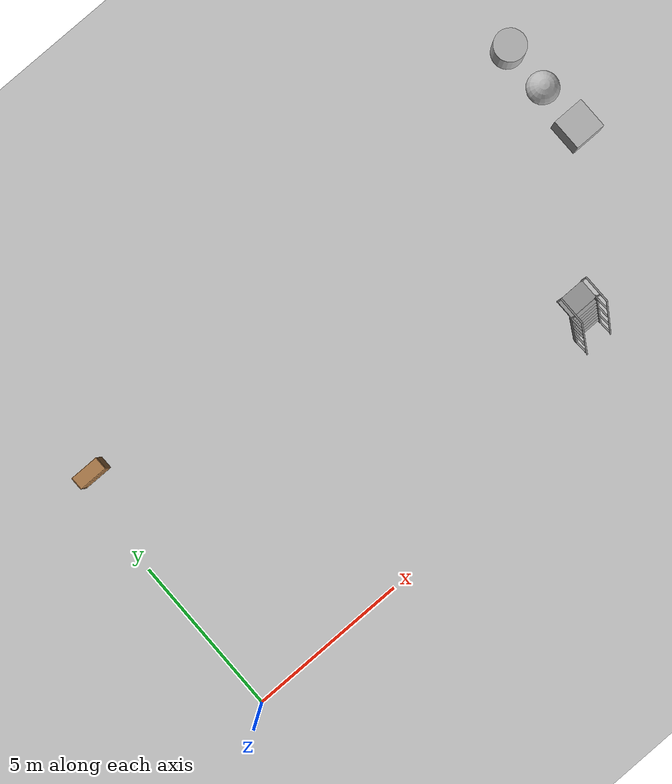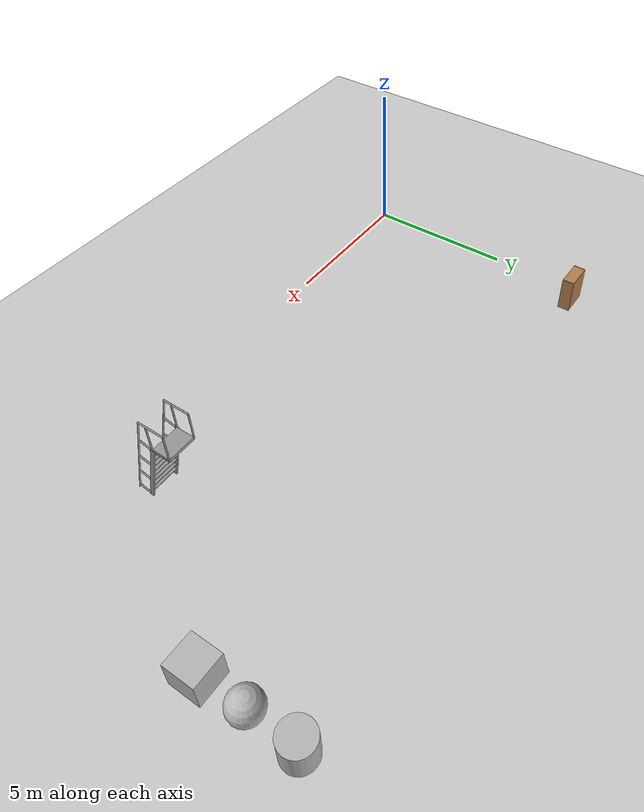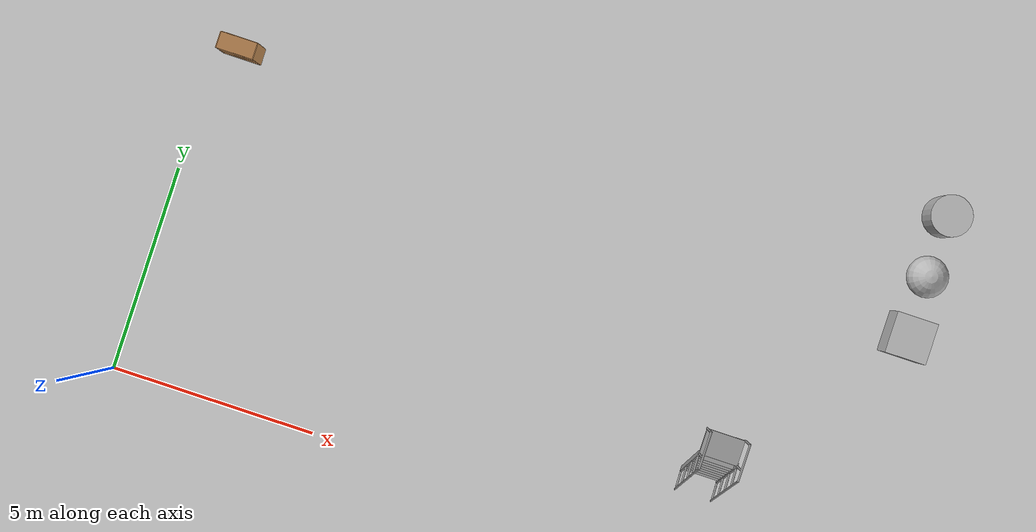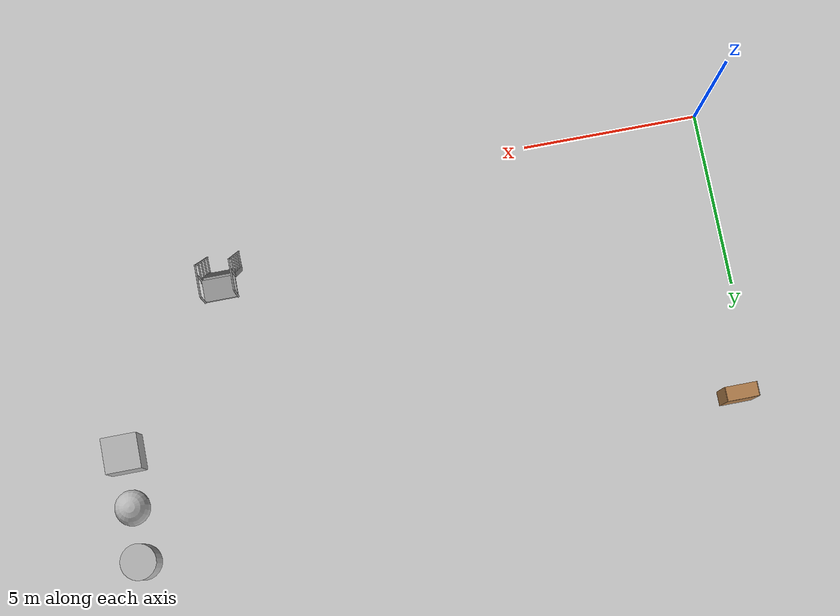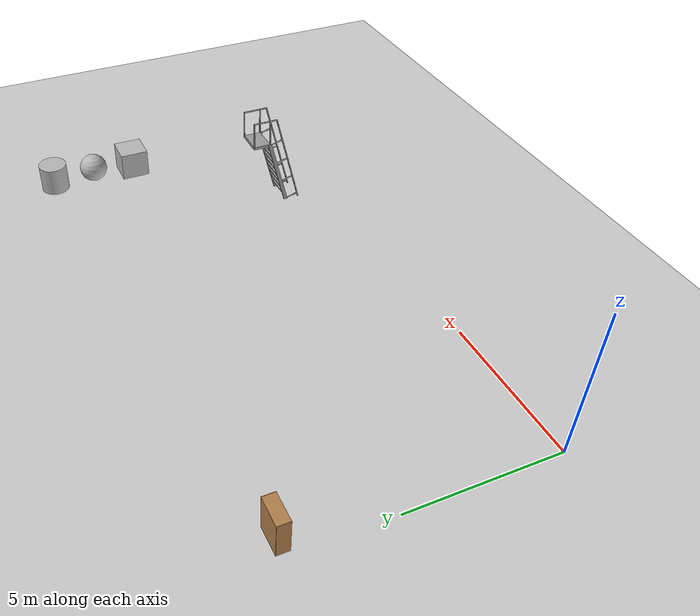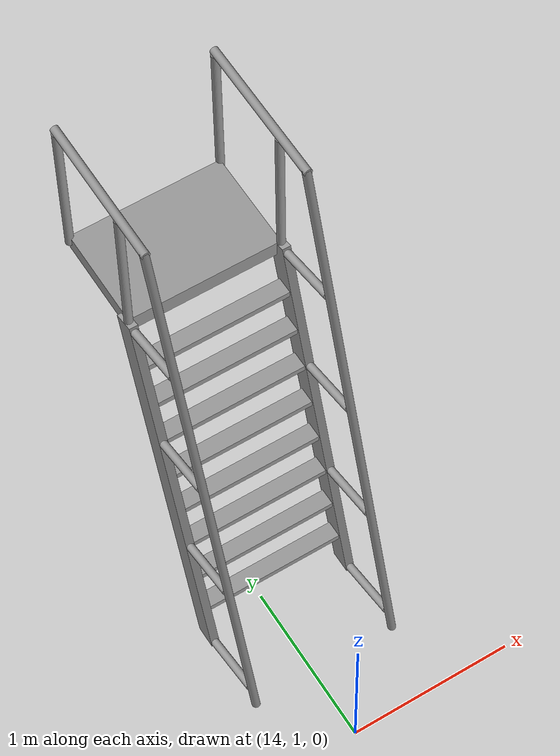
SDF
<sdf version="1.6">
 <world name="default">
  <model name="ground_plane">
   <static>1</static>
   <link name="link">
    <collision name="collision">
     <geometry><plane><normal>0 0 1</normal><size>100 100</size></plane></geometry>
     <surface>
      <contact><collide_bitmask>65535</collide_bitmask></contact>
      <friction><ode><mu>100</mu><mu2>50</mu2></ode></friction>
     </surface>
    </collision>
    <visual name="visual">
     <cast_shadows>0</cast_shadows>
     <geometry><plane><normal>0 0 1</normal><size>100 100</size></plane></geometry>
     <material>
      <script><uri>file://media/materials/scripts/gazebo.material</uri><name>Gazebo/Grey</name></script>
     </material>
    </visual>
   </link>
  </model>
  <model name="bookshelf_1">
   <static>1</static>
   <link name="link">
    <inertial><mass>1</mass></inertial>
    <collision name="back">
     <pose>0 0.005 0.6 0 -0 0</pose>
     <geometry><box><size>0.9 0.01 1.2</size></box></geometry>
    </collision>
    <visual name="visual1">
     <pose>0 0.005 0.6 0 -0 0</pose>
     <geometry><box><size>0.9 0.01 1.2</size></box></geometry>
     <material>
      <script><uri>file://media/materials/scripts/gazebo.material</uri><name>Gazebo/Wood</name></script>
     </material>
    </visual>
    <collision name="left_side">
     <pose>0.45 -0.195 0.6 0 -0 0</pose>
     <geometry><box><size>0.02 0.4 1.2</size></box></geometry>
    </collision>
    <visual name="visual2">
     <pose>0.45 -0.195 0.6 0 -0 0</pose>
     <geometry><box><size>0.02 0.4 1.2</size></box></geometry>
     <material>
      <script><uri>file://media/materials/scripts/gazebo.material</uri><name>Gazebo/Wood</name></script>
     </material>
    </visual>
    <collision name="right_side">
     <pose>-0.45 -0.195 0.6 0 -0 0</pose>
     <geometry><box><size>0.02 0.4 1.2</size></box></geometry>
    </collision>
    <visual name="visual3">
     <pose>-0.45 -0.195 0.6 0 -0 0</pose>
     <geometry><box><size>0.02 0.4 1.2</size></box></geometry>
     <material>
      <script><uri>file://media/materials/scripts/gazebo.material</uri><name>Gazebo/Wood</name></script>
     </material>
    </visual>
    <collision name="bottom">
     <pose>0 -0.195 0.03 0 -0 0</pose>
     <geometry><box><size>0.88 0.4 0.06</size></box></geometry>
    </collision>
    <visual name="visual4">
     <pose>0 -0.195 0.03 0 -0 0</pose>
     <geometry><box><size>0.88 0.4 0.06</size></box></geometry>
     <material>
      <script><uri>file://media/materials/scripts/gazebo.material</uri><name>Gazebo/Wood</name></script>
     </material>
    </visual>
    <collision name="top">
     <pose>0 -0.195 1.19 0 -0 0</pose>
     <geometry><box><size>0.88 0.4 0.02</size></box></geometry>
    </collision>
    <visual name="visual5">
     <pose>0 -0.195 1.19 0 -0 0</pose>
     <geometry><box><size>0.88 0.4 0.02</size></box></geometry>
     <material>
      <script><uri>file://media/materials/scripts/gazebo.material</uri><name>Gazebo/Wood</name></script>
     </material>
    </visual>
    <collision name="low_shelf">
     <pose>0 -0.195 0.43 0 -0 0</pose>
     <geometry><box><size>0.88 0.4 0.02</size></box></geometry>
    </collision>
    <visual name="visual6">
     <pose>0 -0.195 0.43 0 -0 0</pose>
     <geometry><box><size>0.88 0.4 0.02</size></box></geometry>
     <material>
      <script><uri>file://media/materials/scripts/gazebo.material</uri><name>Gazebo/Wood</name></script>
     </material>
    </visual>
    <collision name="high_shelf">
     <pose>0 -0.195 0.8 0 -0 0</pose>
     <geometry><box><size>0.88 0.4 0.02</size></box></geometry>
    </collision>
    <visual name="visual7">
     <pose>0 -0.195 0.8 0 -0 0</pose>
     <geometry><box><size>0.88 0.4 0.02</size></box></geometry>
     <material>
      <script><uri>file://media/materials/scripts/gazebo.material</uri><name>Gazebo/Wood</name></script>
     </material>
    </visual>
   </link>
   <pose>0.626571 8.34129 0 0 -0 0</pose>
  </model>
  <model name="textured_shapes_0">
   <pose>17.6665 8.09572 0.5 0 -0 0</pose>
   <link name="box">
    <pose>0 -1.5 0 0 -0 0</pose>
    <collision name="collision"><geometry><box><size>1 1 1</size></box></geometry></collision>
    <visual name="visual">
     <geometry><box><size>1 1 1</size></box></geometry>
     <material>
      <script>
       <uri>model://textured_shapes/materials/scripts</uri>
       <uri>model://textured_shapes/materials/textures</uri>
       <name>TexturedShape/Squares</name>
      </script>
     </material>
    </visual>
    <inertial>
     <inertia><ixx>1</ixx><ixy>0</ixy><ixz>0</ixz><iyy>1</iyy><iyz>0</iyz><izz>1</izz></inertia>
     <mass>1</mass>
    </inertial>
   </link>
   <link name="sphere">
    <collision name="collision"><geometry><sphere><radius>0.5</radius></sphere></geometry></collision>
    <visual name="visual">
     <geometry><sphere><radius>0.5</radius></sphere></geometry>
     <material>
      <script>
       <uri>model://textured_shapes/materials/scripts</uri>
       <uri>model://textured_shapes/materials/textures</uri>
       <name>TexturedShape/Squares</name>
      </script>
     </material>
    </visual>
    <inertial>
     <inertia><ixx>1</ixx><ixy>0</ixy><ixz>0</ixz><iyy>1</iyy><iyz>0</iyz><izz>1</izz></inertia>
     <mass>1</mass>
    </inertial>
   </link>
   <link name="cylinder">
    <pose>0 1.5 0 0 -0 0</pose>
    <collision name="collision">
     <geometry><cylinder><radius>0.5</radius><length>1</length></cylinder></geometry>
    </collision>
    <visual name="visual">
     <geometry><cylinder><radius>0.5</radius><length>1</length></cylinder></geometry>
     <material>
      <script>
       <uri>model://textured_shapes/materials/scripts</uri>
       <uri>model://textured_shapes/materials/textures</uri>
       <name>TexturedShape/Squares</name>
      </script>
     </material>
    </visual>
    <inertial>
     <inertia><ixx>1</ixx><ixy>0</ixy><ixz>0</ixz><iyy>1</iyy><iyz>0</iyz><izz>1</izz></inertia>
     <mass>1</mass>
    </inertial>
   </link>
  </model>
  <model name="ladder_75deg_2rails">
   <static>1</static>
   <link name="step0">
    <pose>0 0.071453 0.266667 0 -0 0</pose>
    <inertial>
     <mass>9.75482</mass>
     <inertia>
      <ixx>0.00957124</ixx>
      <iyy>0.65963</iyy>
      <izz>0.666842</izz>
      <ixy>0</ixy>
      <ixz>0</ixz>
      <iyz>0</iyz>
     </inertia>
    </inertial>
    <collision name="collision"><geometry><box><size>0.9 0.1016 0.0381</size></box></geometry></collision>
    <visual name="visual">
     <geometry><box><size>0.9 0.1016 0.0381</size></box></geometry>
     <material>
      <script><uri>file://media/materials/scripts/gazebo.material</uri><name>Gazebo/Grey</name></script>
     </material>
    </visual>
   </link>
   <link name="step1">
    <pose>0 0.142906 0.533333 0 -0 0</pose>
    <inertial>
     <mass>9.75482</mass>
     <inertia>
      <ixx>0.00957124</ixx>
      <iyy>0.65963</iyy>
      <izz>0.666842</izz>
      <ixy>0</ixy>
      <ixz>0</ixz>
      <iyz>0</iyz>
     </inertia>
    </inertial>
    <collision name="collision"><geometry><box><size>0.9 0.1016 0.0381</size></box></geometry></collision>
    <visual name="visual">
     <geometry><box><size>0.9 0.1016 0.0381</size></box></geometry>
     <material>
      <script><uri>file://media/materials/scripts/gazebo.material</uri><name>Gazebo/Grey</name></script>
     </material>
    </visual>
   </link>
   <link name="step2">
    <pose>0 0.214359 0.8 0 -0 0</pose>
    <inertial>
     <mass>9.75482</mass>
     <inertia>
      <ixx>0.00957124</ixx>
      <iyy>0.65963</iyy>
      <izz>0.666842</izz>
      <ixy>0</ixy>
      <ixz>0</ixz>
      <iyz>0</iyz>
     </inertia>
    </inertial>
    <collision name="collision"><geometry><box><size>0.9 0.1016 0.0381</size></box></geometry></collision>
    <visual name="visual">
     <geometry><box><size>0.9 0.1016 0.0381</size></box></geometry>
     <material>
      <script><uri>file://media/materials/scripts/gazebo.material</uri><name>Gazebo/Grey</name></script>
     </material>
    </visual>
   </link>
   <link name="step3">
    <pose>0 0.285812 1.06667 0 -0 0</pose>
    <inertial>
     <mass>9.75482</mass>
     <inertia>
      <ixx>0.00957124</ixx>
      <iyy>0.65963</iyy>
      <izz>0.666842</izz>
      <ixy>0</ixy>
      <ixz>0</ixz>
      <iyz>0</iyz>
     </inertia>
    </inertial>
    <collision name="collision"><geometry><box><size>0.9 0.1016 0.0381</size></box></geometry></collision>
    <visual name="visual">
     <geometry><box><size>0.9 0.1016 0.0381</size></box></geometry>
     <material>
      <script><uri>file://media/materials/scripts/gazebo.material</uri><name>Gazebo/Grey</name></script>
     </material>
    </visual>
   </link>
   <link name="step4">
    <pose>0 0.357266 1.33333 0 -0 0</pose>
    <inertial>
     <mass>9.75482</mass>
     <inertia>
      <ixx>0.00957124</ixx>
      <iyy>0.65963</iyy>
      <izz>0.666842</izz>
      <ixy>0</ixy>
      <ixz>0</ixz>
      <iyz>0</iyz>
     </inertia>
    </inertial>
    <collision name="collision"><geometry><box><size>0.9 0.1016 0.0381</size></box></geometry></collision>
    <visual name="visual">
     <geometry><box><size>0.9 0.1016 0.0381</size></box></geometry>
     <material>
      <script><uri>file://media/materials/scripts/gazebo.material</uri><name>Gazebo/Grey</name></script>
     </material>
    </visual>
   </link>
   <link name="step5">
    <pose>0 0.428719 1.6 0 -0 0</pose>
    <inertial>
     <mass>9.75482</mass>
     <inertia>
      <ixx>0.00957124</ixx>
      <iyy>0.65963</iyy>
      <izz>0.666842</izz>
      <ixy>0</ixy>
      <ixz>0</ixz>
      <iyz>0</iyz>
     </inertia>
    </inertial>
    <collision name="collision"><geometry><box><size>0.9 0.1016 0.0381</size></box></geometry></collision>
    <visual name="visual">
     <geometry><box><size>0.9 0.1016 0.0381</size></box></geometry>
     <material>
      <script><uri>file://media/materials/scripts/gazebo.material</uri><name>Gazebo/Grey</name></script>
     </material>
    </visual>
   </link>
   <link name="step6">
    <pose>0 0.500172 1.86667 0 -0 0</pose>
    <inertial>
     <mass>9.75482</mass>
     <inertia>
      <ixx>0.00957124</ixx>
      <iyy>0.65963</iyy>
      <izz>0.666842</izz>
      <ixy>0</ixy>
      <ixz>0</ixz>
      <iyz>0</iyz>
     </inertia>
    </inertial>
    <collision name="collision"><geometry><box><size>0.9 0.1016 0.0381</size></box></geometry></collision>
    <visual name="visual">
     <geometry><box><size>0.9 0.1016 0.0381</size></box></geometry>
     <material>
      <script><uri>file://media/materials/scripts/gazebo.material</uri><name>Gazebo/Grey</name></script>
     </material>
    </visual>
   </link>
   <link name="step7">
    <pose>0 0.571625 2.13333 0 -0 0</pose>
    <inertial>
     <mass>9.75482</mass>
     <inertia>
      <ixx>0.00957124</ixx>
      <iyy>0.65963</iyy>
      <izz>0.666842</izz>
      <ixy>0</ixy>
      <ixz>0</ixz>
      <iyz>0</iyz>
     </inertia>
    </inertial>
    <collision name="collision"><geometry><box><size>0.9 0.1016 0.0381</size></box></geometry></collision>
    <visual name="visual">
     <geometry><box><size>0.9 0.1016 0.0381</size></box></geometry>
     <material>
      <script><uri>file://media/materials/scripts/gazebo.material</uri><name>Gazebo/Grey</name></script>
     </material>
    </visual>
   </link>
   <link name="landing">
    <pose>0 0.943078 2.4 0 -0 0</pose>
    <inertial>
     <mass>57.6072</mass>
     <inertia><ixx>1.73518</ixx><iyy>3.89545</iyy><izz>5.6167</izz><ixy>0</ixy><ixz>0</ixz><iyz>0</iyz></inertia>
    </inertial>
    <collision name="collision"><geometry><box><size>0.9 0.6 0.1016</size></box></geometry></collision>
    <visual name="visual">
     <geometry><box><size>0.9 0.6 0.1016</size></box></geometry>
     <material>
      <script><uri>file://media/materials/scripts/gazebo.material</uri><name>Gazebo/Grey</name></script>
     </material>
    </visual>
   </link>
   <link name="left_side_wall">
    <pose>-0.45 0.321539 1.2 1.309 -0 0</pose>
    <collision name="collision"><geometry><box><size>0.0508 2.56466 0.13</size></box></geometry></collision>
    <visual name="visual">
     <geometry><box><size>0.0508 2.56466 0.13</size></box></geometry>
     <material>
      <script><uri>file://media/materials/scripts/gazebo.material</uri><name>Gazebo/Grey</name></script>
     </material>
    </visual>
   </link>
   <link name="right_side_wall">
    <pose>0.45 0.321539 1.2 1.309 -0 0</pose>
    <collision name="collision"><geometry><box><size>0.0508 2.56466 0.13</size></box></geometry></collision>
    <visual name="visual">
     <geometry><box><size>0.0508 2.56466 0.13</size></box></geometry>
     <material>
      <script><uri>file://media/materials/scripts/gazebo.material</uri><name>Gazebo/Grey</name></script>
     </material>
    </visual>
   </link>
   <link name="left_railing_long">
    <pose>-0.45 -0.053461 1.66651 -0.261799 0 0</pose>
    <collision name="collision">
     <geometry><cylinder><radius>0.02413</radius><length>3.51529</length></cylinder></geometry>
    </collision>
    <visual name="visual">
     <geometry><cylinder><radius>0.02413</radius><length>3.51529</length></cylinder></geometry>
     <material>
      <script><uri>file://media/materials/scripts/gazebo.material</uri><name>Gazebo/Grey</name></script>
     </material>
    </visual>
   </link>
   <link name="left_railing_upright0">
    <pose>-0.45 -0.210089 0.056293 1.309 -0 0</pose>
    <collision name="collision">
     <geometry><cylinder><radius>0.02413</radius><length>0.482963</length></cylinder></geometry>
    </collision>
    <visual name="visual">
     <geometry><cylinder><radius>0.02413</radius><length>0.482963</length></cylinder></geometry>
     <material>
      <script><uri>file://media/materials/scripts/gazebo.material</uri><name>Gazebo/Grey</name></script>
     </material>
    </visual>
   </link>
   <link name="left_railing_upright1">
    <pose>-0.45 0.00427 0.856293 1.309 -0 0</pose>
    <collision name="collision">
     <geometry><cylinder><radius>0.02413</radius><length>0.482963</length></cylinder></geometry>
    </collision>
    <visual name="visual">
     <geometry><cylinder><radius>0.02413</radius><length>0.482963</length></cylinder></geometry>
     <material>
      <script><uri>file://media/materials/scripts/gazebo.material</uri><name>Gazebo/Grey</name></script>
     </material>
    </visual>
   </link>
   <link name="left_railing_upright2">
    <pose>-0.45 0.21863 1.65629 1.309 -0 0</pose>
    <collision name="collision">
     <geometry><cylinder><radius>0.02413</radius><length>0.482963</length></cylinder></geometry>
    </collision>
    <visual name="visual">
     <geometry><cylinder><radius>0.02413</radius><length>0.482963</length></cylinder></geometry>
     <material>
      <script><uri>file://media/materials/scripts/gazebo.material</uri><name>Gazebo/Grey</name></script>
     </material>
    </visual>
   </link>
   <link name="left_railing_upright3">
    <pose>-0.45 0.432989 2.45629 1.309 -0 0</pose>
    <collision name="collision">
     <geometry><cylinder><radius>0.02413</radius><length>0.482963</length></cylinder></geometry>
    </collision>
    <visual name="visual">
     <geometry><cylinder><radius>0.02413</radius><length>0.482963</length></cylinder></geometry>
     <material>
      <script><uri>file://media/materials/scripts/gazebo.material</uri><name>Gazebo/Grey</name></script>
     </material>
    </visual>
   </link>
   <link name="left_railing_landing_top">
    <pose>-0.45 0.818078 3.35714 1.5708 -0 0</pose>
    <collision name="collision">
     <geometry><cylinder><radius>0.02413</radius><length>0.87413</length></cylinder></geometry>
    </collision>
    <visual name="visual">
     <geometry><cylinder><radius>0.02413</radius><length>0.87413</length></cylinder></geometry>
     <material>
      <script><uri>file://media/materials/scripts/gazebo.material</uri><name>Gazebo/Grey</name></script>
     </material>
    </visual>
   </link>
   <link name="left_railing_landing_upright_0">
    <pose>-0.45 0.643078 2.86651 0 -0 0</pose>
    <collision name="collision">
     <geometry><cylinder><radius>0.02413</radius><length>0.933013</length></cylinder></geometry>
    </collision>
    <visual name="visual">
     <geometry><cylinder><radius>0.02413</radius><length>0.933013</length></cylinder></geometry>
     <material>
      <script><uri>file://media/materials/scripts/gazebo.material</uri><name>Gazebo/Grey</name></script>
     </material>
    </visual>
   </link>
   <link name="left_railing_landing_upright_1">
    <pose>-0.45 1.24308 2.86651 0 -0 0</pose>
    <collision name="collision">
     <geometry><cylinder><radius>0.02413</radius><length>0.933013</length></cylinder></geometry>
    </collision>
    <visual name="visual">
     <geometry><cylinder><radius>0.02413</radius><length>0.933013</length></cylinder></geometry>
     <material>
      <script><uri>file://media/materials/scripts/gazebo.material</uri><name>Gazebo/Grey</name></script>
     </material>
    </visual>
   </link>
   <link name="right_railing_long">
    <pose>0.45 -0.053461 1.66651 -0.261799 0 0</pose>
    <collision name="collision">
     <geometry><cylinder><radius>0.02413</radius><length>3.51529</length></cylinder></geometry>
    </collision>
    <visual name="visual">
     <geometry><cylinder><radius>0.02413</radius><length>3.51529</length></cylinder></geometry>
     <material>
      <script><uri>file://media/materials/scripts/gazebo.material</uri><name>Gazebo/Grey</name></script>
     </material>
    </visual>
   </link>
   <link name="right_railing_upright0">
    <pose>0.45 -0.210089 0.056293 1.309 -0 0</pose>
    <collision name="collision">
     <geometry><cylinder><radius>0.02413</radius><length>0.482963</length></cylinder></geometry>
    </collision>
    <visual name="visual">
     <geometry><cylinder><radius>0.02413</radius><length>0.482963</length></cylinder></geometry>
     <material>
      <script><uri>file://media/materials/scripts/gazebo.material</uri><name>Gazebo/Grey</name></script>
     </material>
    </visual>
   </link>
   <link name="right_railing_upright1">
    <pose>0.45 0.00427 0.856293 1.309 -0 0</pose>
    <collision name="collision">
     <geometry><cylinder><radius>0.02413</radius><length>0.482963</length></cylinder></geometry>
    </collision>
    <visual name="visual">
     <geometry><cylinder><radius>0.02413</radius><length>0.482963</length></cylinder></geometry>
     <material>
      <script><uri>file://media/materials/scripts/gazebo.material</uri><name>Gazebo/Grey</name></script>
     </material>
    </visual>
   </link>
   <link name="right_railing_upright2">
    <pose>0.45 0.21863 1.65629 1.309 -0 0</pose>
    <collision name="collision">
     <geometry><cylinder><radius>0.02413</radius><length>0.482963</length></cylinder></geometry>
    </collision>
    <visual name="visual">
     <geometry><cylinder><radius>0.02413</radius><length>0.482963</length></cylinder></geometry>
     <material>
      <script><uri>file://media/materials/scripts/gazebo.material</uri><name>Gazebo/Grey</name></script>
     </material>
    </visual>
   </link>
   <link name="right_railing_upright3">
    <pose>0.45 0.432989 2.45629 1.309 -0 0</pose>
    <collision name="collision">
     <geometry><cylinder><radius>0.02413</radius><length>0.482963</length></cylinder></geometry>
    </collision>
    <visual name="visual">
     <geometry><cylinder><radius>0.02413</radius><length>0.482963</length></cylinder></geometry>
     <material>
      <script><uri>file://media/materials/scripts/gazebo.material</uri><name>Gazebo/Grey</name></script>
     </material>
    </visual>
   </link>
   <link name="right_railing_landing_top">
    <pose>0.45 0.818078 3.35714 1.5708 -0 0</pose>
    <collision name="collision">
     <geometry><cylinder><radius>0.02413</radius><length>0.87413</length></cylinder></geometry>
    </collision>
    <visual name="visual">
     <geometry><cylinder><radius>0.02413</radius><length>0.87413</length></cylinder></geometry>
     <material>
      <script><uri>file://media/materials/scripts/gazebo.material</uri><name>Gazebo/Grey</name></script>
     </material>
    </visual>
   </link>
   <link name="right_railing_landing_upright_0">
    <pose>0.45 0.643078 2.86651 0 -0 0</pose>
    <collision name="collision">
     <geometry><cylinder><radius>0.02413</radius><length>0.933013</length></cylinder></geometry>
    </collision>
    <visual name="visual">
     <geometry><cylinder><radius>0.02413</radius><length>0.933013</length></cylinder></geometry>
     <material>
      <script><uri>file://media/materials/scripts/gazebo.material</uri><name>Gazebo/Grey</name></script>
     </material>
    </visual>
   </link>
   <link name="right_railing_landing_upright_1">
    <pose>0.45 1.24308 2.86651 0 -0 0</pose>
    <collision name="collision">
     <geometry><cylinder><radius>0.02413</radius><length>0.933013</length></cylinder></geometry>
    </collision>
    <visual name="visual">
     <geometry><cylinder><radius>0.02413</radius><length>0.933013</length></cylinder></geometry>
     <material>
      <script><uri>file://media/materials/scripts/gazebo.material</uri><name>Gazebo/Grey</name></script>
     </material>
    </visual>
   </link>
   <pose>14.079 1.94688 0 0 -0 0</pose>
  </model>
 </world>
</sdf>
